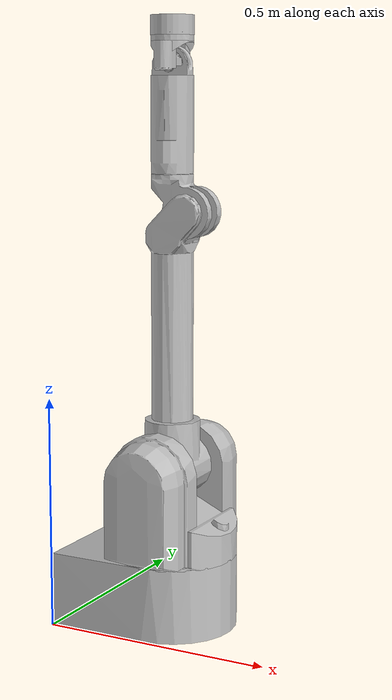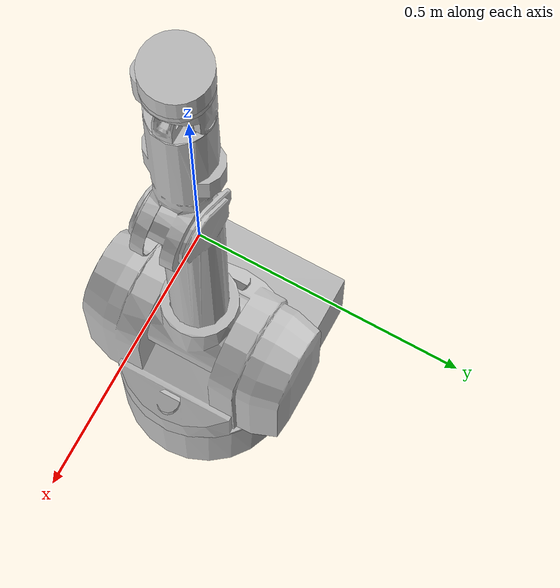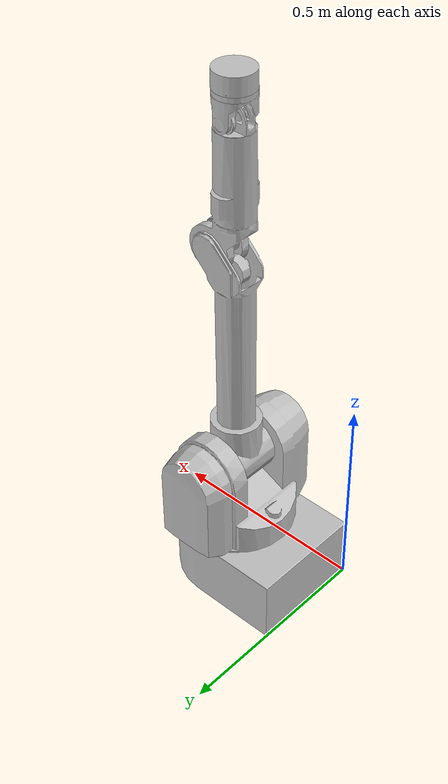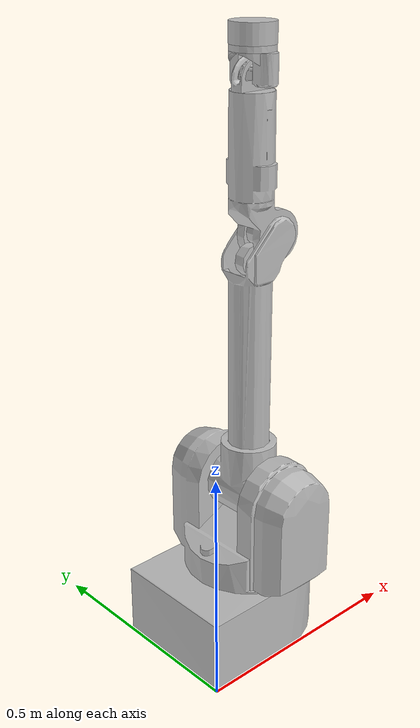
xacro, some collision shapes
<?xml version="1.0"?>
<robot name="iri_wam" xmlns:xacro="http://www.ros.org/wiki/xacro" >

  <!-- Set up definitions of parts of the robot body -->
  <xacro:include filename="$(find iri_wam_description)/xacro/iri_wam_base.urdf.xacro" />
  <xacro:include filename="$(find iri_wam_description)/xacro/iri_wam_1.urdf.xacro" />
  <xacro:include filename="$(find iri_wam_description)/xacro/iri_wam_2.urdf.xacro" />
  <xacro:include filename="$(find iri_wam_description)/xacro/iri_wam_3.urdf.xacro" />
  <xacro:include filename="$(find iri_wam_description)/xacro/iri_wam_4.urdf.xacro" />
  <xacro:include filename="$(find iri_wam_description)/xacro/iri_wam_5.urdf.xacro" />
  <xacro:include filename="$(find iri_wam_description)/xacro/iri_wam_6.urdf.xacro" />
  <xacro:include filename="$(find iri_wam_description)/xacro/iri_wam_7.urdf.xacro" />
  <xacro:include filename="$(find iri_wam_description)/xacro/iri_wam_tcp.urdf.xacro" />
  <xacro:include filename="$(find iri_wam_description)/xacro/misc/kinect.urdf.xacro" />
  <xacro:include filename="$(find iri_wam_description)/xacro/misc/spoon.urdf.xacro" />
  <xacro:include filename="$(find iri_wam_description)/xacro/misc/light_sensor.urdf.xacro" />
  <xacro:include filename="$(find iri_wam_description)/xacro/misc/hokuyo_laser.urdf.xacro" />

  <xacro:property name="robot_name" value="iri_wam"/>

  <!-- This will attach the robot to the world link -->
  <link name="world"/>
  <joint name="fixed" type="fixed">
    <parent link="world"/>
    <child  link="${robot_name}_link_footprint"/>
  </joint>

  <xacro:wambase prefix="${robot_name}"/>
  <xacro:wam1 prefix="${robot_name}" parent="${robot_name}_link_base"/>
  <xacro:wam2 prefix="${robot_name}" parent="${robot_name}_link_1"/>
  <xacro:wam3 prefix="${robot_name}" parent="${robot_name}_link_2"/>
  <xacro:wam4 prefix="${robot_name}" parent="${robot_name}_link_3"/>
  <xacro:wam5 prefix="${robot_name}" parent="${robot_name}_link_4"/>
  <xacro:wam6 prefix="${robot_name}" parent="${robot_name}_link_5"/>
  <xacro:wam7 prefix="${robot_name}" parent="${robot_name}_link_6"/>
  <xacro:wamtcp prefix="${robot_name}" parent="${robot_name}_link_7"/>
  <xacro:hokuyo_laser parent="${robot_name}_link_tcp" xyz="0 0 0.02" rpy="0 0 0"/>
  <!-- Not used but exposed here for educational purposes -->

  <!-- ros_control plugin -->
  <gazebo>
    <plugin name="gazebo_ros_control" filename="libgazebo_ros_control.so">
      <robotNamespace>/${robot_name}</robotNamespace>
      <robotParam>robot_description</robotParam>
      <robotSimType>gazebo_ros_control/DefaultRobotHWSim</robotSimType>
      <controlPeriod>0.002</controlPeriod>
      <eStopTopic>e_stop</eStopTopic>
    </plugin>
  </gazebo>

</robot>

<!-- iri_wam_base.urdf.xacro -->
<robot xmlns:xacro="http://www.ros.org/wiki/xacro">

  <xacro:property name="M_PI" value="3.1415926535897931" />

  <xacro:property name="base_mass" value="20"/>
  <xacro:property name="base_cg_x" value="0.0"/>
  <xacro:property name="base_cg_y" value="0.0"/>
  <xacro:property name="base_cg_z" value="0.0"/>

  <xacro:macro name="wambase" params="prefix">
    <link name="${prefix}_link_base">
        <inertial>
            <mass value="${base_mass}" />
            <origin xyz="${base_cg_x} ${base_cg_y} ${base_cg_z}" />
            <inertia ixx="0.5" ixy="0.0" ixz="0.0"
                     iyy="0.5" iyz="0.0"
                     izz="0.5" />
        </inertial>

        <visual>
            <origin xyz="0 0 0" rpy="0 0 0" />
            <geometry>
                <mesh filename="package://iri_wam_description/mesh/wambase.stl" scale="1.0 1.0 1.0" />
            </geometry>
            <material name="Grey" >
                <color rgba="0.75 0.75 0.75 1.0"/>
            </material>
        </visual>

        <collision>
            <origin xyz="0.0 0.0 0.0" rpy="0 0 0"/>
            <geometry>
                <mesh filename="package://iri_wam_description/mesh/wambase_collision.stl" scale="1.0 1.0 1.0" />
            </geometry>
            <contact_coefficients kd="1.0" kp="1000.0" mu="0"/>
        </collision>
    </link>

    <link name="${prefix}_link_footprint"/>

    <joint name="${prefix}_joint_footprint" type="fixed">
        <origin xyz="0.22 0.14 0.346" rpy="0 0 0" />
        <child link="${prefix}_link_base"/>
        <parent link="${prefix}_link_footprint"/>
    </joint>

    <gazebo reference="${prefix}_link_base">
        <selfCollide>true</selfCollide>
        <material>Gazebo/Grey</material>
    </gazebo>

  </xacro:macro>

</robot>

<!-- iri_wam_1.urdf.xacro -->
<robot xmlns:xacro="http://www.ros.org/wiki/xacro">

  <xacro:property name="M_PI" value="3.1415926535897931" />

  <xacro:macro name="wam1" params="prefix parent">

    <link name="${prefix}_link_1">
        <inertial>
            <mass value="8.3936" />
            <origin xyz="0.0 0.0 0.0" rpy="0 0 0" />
            <inertia ixx="0.5" ixy="0.0" ixz="0.0"
                     iyy="0.5" iyz="0.0"
                     izz="0.5" />
        </inertial>
        <visual>
            <origin xyz="0.0 0.0 0.0" rpy="0 0 0" />
            <geometry name="${prefix}_link_1_visual">
                <mesh filename="package://iri_wam_description/mesh/wam1.stl" scale="1.0 1.0 1.0" />
            </geometry>
            <material name="Grey" >
                <color rgba="0.75 0.75 0.75 1.0"/>
            </material>
        </visual>
        <collision>
            <origin xyz="0.0 0.0 0.0" rpy="0 0 0"/>
            <geometry name="${prefix}_link_1_collision">
                <mesh filename="package://iri_wam_description/mesh/wam1_collision.stl" scale="1.0 1.0 1.0" />
            </geometry>
            <contact_coefficients kd="1.0" kp="1000.0" mu="0"/>
        </collision>
    </link>

    <gazebo reference="${prefix}_link_1">
        <material>Gazebo/Grey</material>
        <selfCollide>true</selfCollide>
    </gazebo>

    <joint name="${prefix}_joint_1" type="revolute">
        <parent link="${parent}"/>
        <child link="${prefix}_link_1"/>
        <origin xyz="0.0 0.0 0.0" rpy="0 0 0" />
        <axis xyz="0 0 1" />
        <limit lower="-2.6" upper="2.6" effort="75" velocity="2.0"/>
        <dynamics damping="100"/>
    </joint>

    <transmission name="tran_1">
      <type>transmission_interface/SimpleTransmission</type>
      <joint name="${prefix}_joint_1">
       <hardwareInterface>EffortJointInterface</hardwareInterface>
      </joint>
      <actuator name="motor_1">
        <hardwareInterface>EffortJointInterface</hardwareInterface>
      	<mechanicalReduction>50</mechanicalReduction>
        <motorTorqueConstant>1</motorTorqueConstant>
      </actuator>
    </transmission>

  </xacro:macro>

</robot>

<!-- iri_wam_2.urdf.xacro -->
<robot xmlns:xacro="http://www.ros.org/wiki/xacro">

  <xacro:property name="M_PI" value="3.1415926535897931" />

  <xacro:macro name="wam2" params="prefix parent">

    <link name="${prefix}_link_2">
        <inertial>
            <mass value="4.8487" />
            <origin xyz="0 0 0" rpy="0 0 0" />
            <inertia ixx="0.1" ixy="0.0" ixz="0.0"
                     iyy="0.1" iyz="0.0"
                     izz="0.1" />
        </inertial>
        <visual>
            <origin xyz="0.0 0.0 0.0" rpy="0 0 0" />
            <geometry name="${prefix}_link_2_visual">
                <mesh filename="package://iri_wam_description/mesh/wam2.stl" scale="1.0 1.0 1.0" />
            </geometry>
            <material name="Grey" >
                <color rgba="0.75 0.75 0.75 1.0"/>
            </material>
        </visual>
        <collision>
            <origin xyz="0.0 0.0 0.0" rpy="0 0 0"/>
            <geometry name="${prefix}_link_2_collision">
                <mesh filename="package://iri_wam_description/mesh/wam2_collision.stl" scale="1.0 1.0 1.0" />
            </geometry>
            <contact_coefficients kd="1.0" kp="1000.0" mu="0"/>
        </collision>
    </link>

    <gazebo reference="${prefix}_link_2">
        <material>Gazebo/Grey</material>
        <selfCollide>true</selfCollide>
    </gazebo>

    <joint name="${prefix}_joint_2" type="revolute">
        <parent link="${parent}"/>
        <child link="${prefix}_link_2"/>
        <origin xyz="0.0 0.0 0.0" rpy="0 0 0" />
        <axis xyz="0 1 0" />
        <limit lower="-2.0" upper="2.0" effort="75" velocity="2.0"/>
        <dynamics damping="100"/>
    </joint>

    <transmission name="tran_2">
      <type>transmission_interface/SimpleTransmission</type>
      <joint name="${prefix}_joint_2">
      <hardwareInterface>EffortJointInterface</hardwareInterface>
      </joint>
      <actuator name="motor_2">
        <hardwareInterface>EffortJointInterface</hardwareInterface>
      	<mechanicalReduction>50</mechanicalReduction>
        <motorTorqueConstant>1</motorTorqueConstant>
      </actuator>
    </transmission>

  </xacro:macro>

</robot>

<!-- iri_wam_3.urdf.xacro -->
<robot xmlns:xacro="http://www.ros.org/wiki/xacro">

  <xacro:property name="M_PI" value="3.1415926535897931" />

  <xacro:macro name="wam3" params="prefix parent">

    <link name="${prefix}_link_3">
        <inertial>
            <mass value="1.7251" />
            <origin xyz="0 0 0.225" rpy="0 0 0" />
            <inertia ixx="0.1" ixy="0.0" ixz="0.0"
                     iyy="0.1" iyz="0.0"
                     izz="0.1" />
        </inertial>
        <visual>
            <origin xyz="0.0 0.0 0.0" rpy="0 0 0" />
            <geometry name="${prefix}_link_3_visual">
                <mesh filename="package://iri_wam_description/mesh/wam3.stl" scale="1.0 1.0 1.0" />
            </geometry>
            <material name="Grey" >
                <color rgba="0.75 0.75 0.75 1.0"/>
            </material>
        </visual>
        <collision>
            <origin xyz="0.0 0.0 0.0" rpy="0 0 0"/>
            <geometry name="${prefix}_link_3_collision">
                <mesh filename="package://iri_wam_description/mesh/wam3_collision.stl" scale="1.0 1.0 1.0" />
            </geometry>
            <contact_coefficients kd="1.0" kp="1000.0" mu="0"/>
        </collision>
    </link>

    <gazebo reference="${prefix}_link_3">
        <material>Gazebo/Grey</material>
        <selfCollide>true</selfCollide>
    </gazebo>

    <joint name="${prefix}_joint_3" type="revolute">
        <parent link="${parent}"/>
        <child link="${prefix}_link_3"/>
        <origin xyz="0.0 0.0 0.0" rpy="0 0 0" />
        <axis xyz="0 0 1" />
        <limit lower="-2.8" upper="2.8" effort="75" velocity="2.0"/>
        <dynamics damping="100"/>
    </joint>

    <transmission name="tran_3">
      <type>transmission_interface/SimpleTransmission</type>
      <joint name="${prefix}_joint_3">
        <hardwareInterface>EffortJointInterface</hardwareInterface>
      </joint>
      <actuator name="motor_3">
        <hardwareInterface>EffortJointInterface</hardwareInterface>
      	<mechanicalReduction>50</mechanicalReduction>
        <motorTorqueConstant>1</motorTorqueConstant>
      </actuator>
    </transmission>

  </xacro:macro>

</robot>

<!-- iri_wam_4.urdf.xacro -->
<robot xmlns:xacro="http://www.ros.org/wiki/xacro">

  <xacro:property name="M_PI" value="3.1415926535897931" />

  <xacro:macro name="wam4" params="prefix parent">

    <link name="${prefix}_link_4">
        <inertial>
            <mass value="2.0824" />
            <origin xyz="-0.045 -0.15 0" rpy="0 0 0" />
            <inertia ixx="0.2" ixy="0.0" ixz="0.0"
                     iyy="0.2" iyz="0.0"
                     izz="0.2" />
        </inertial>
        <visual>
            <origin xyz="0.0 0.0 0.0" rpy="0 0 0" />
            <geometry name="${prefix}_link_4_visual">
                <mesh filename="package://iri_wam_description/mesh/wam4.stl" scale="1.0 1.0 1.0" />
            </geometry>
            <material name="Grey" >
                <color rgba="0.75 0.75 0.75 1.0"/>
            </material>
        </visual>
        <collision>
            <origin xyz="0.0 0.0 0.0" rpy="0 0 0"/>
            <geometry name="${prefix}_link_4_collision">
                <mesh filename="package://iri_wam_description/mesh/wam4_collision.stl" scale="1.0 1.0 1.0" />
            </geometry>
            <contact_coefficients kd="1.0" kp="1000.0" mu="0"/>
        </collision>
    </link>

    <gazebo reference="${prefix}_link_4">
        <material>Gazebo/Grey</material>
        <selfCollide>true</selfCollide>
    </gazebo>

    <joint name="${prefix}_joint_4" type="revolute">
        <parent link="${parent}"/>
        <child link="${prefix}_link_4"/>
        <origin xyz="0.045 0.0 0.55" rpy="-${M_PI/2} 0 0" />
        <axis xyz="0 0 1" />
        <limit lower="-0.9" upper="3.1" effort="75" velocity="2.0"/>
        <dynamics damping="100"/>
    </joint>

    <transmission name="tran_4">
      <type>transmission_interface/SimpleTransmission</type>
      <joint name="${prefix}_joint_4">
        <hardwareInterface>EffortJointInterface</hardwareInterface>

      </joint>
      <actuator name="motor_4">
        <hardwareInterface>EffortJointInterface</hardwareInterface>
      	<mechanicalReduction>50</mechanicalReduction>
        <motorTorqueConstant>1</motorTorqueConstant>
      </actuator>
    </transmission>

  </xacro:macro>

</robot>

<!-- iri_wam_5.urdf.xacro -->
<robot xmlns:xacro="http://www.ros.org/wiki/xacro">

  <xacro:property name="M_PI" value="3.1415926535897931" />

  <xacro:macro name="wam5" params="prefix parent">

    <link name="${prefix}_link_5">
        <inertial>
            <mass value="0.3067" />
            <origin xyz="0 0 0" rpy="0 0 0" />
            <inertia ixx="0.1" ixy="0.0" ixz="0.0"
                     iyy="0.1" iyz="0.0"
                     izz="0.1" />
        </inertial>
        <visual>
            <origin xyz="0.0 0.0 0.0" rpy="0 0 0" />
            <geometry name="${prefix}_link_5_visual">
                <mesh filename="package://iri_wam_description/mesh/wam5.stl" scale="1.0 1.0 1.0" />
            </geometry>
            <material name="Grey" >
                <color rgba="0.75 0.75 0.75 1.0"/>
            </material>
        </visual>
        <collision>
            <origin xyz="0.0 0.0 0.0" rpy="0 0 0"/>
            <geometry name="${prefix}_link_5_collision">
                <mesh filename="package://iri_wam_description/mesh/wam5_collision.stl" scale="1.0 1.0 1.0" />
            </geometry>
            <contact_coefficients kd="1.0" kp="1000.0" mu="0"/>
        </collision>
    </link>

    <gazebo reference="${prefix}_link_5">
        <material>Gazebo/Grey</material>
        <selfCollide>true</selfCollide>
    </gazebo>

    <joint name="${prefix}_joint_5" type="revolute">
        <parent link="${parent}"/>
        <child link="${prefix}_link_5"/>
        <origin xyz="-0.045 -0.3 0.0" rpy="${M_PI/2} 0 0" />
        <axis xyz="0 0 1" />
        <limit lower="-4.76" upper="1.24" effort="75" velocity="2.0"/>
        <dynamics damping="100"/>
    </joint>

    <transmission name="tran_5">
      <type>transmission_interface/SimpleTransmission</type>
      <joint name="${prefix}_joint_5">
        <hardwareInterface>EffortJointInterface</hardwareInterface>
</joint>
      <actuator name="motor_5">
        <hardwareInterface>EffortJointInterface</hardwareInterface>
      	<mechanicalReduction>50</mechanicalReduction>
        <motorTorqueConstant>1</motorTorqueConstant>
      </actuator>
    </transmission>

  </xacro:macro>

</robot>

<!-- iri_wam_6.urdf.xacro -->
<robot xmlns:xacro="http://www.ros.org/wiki/xacro">

  <xacro:property name="M_PI" value="3.1415926535897931" />

  <xacro:macro name="wam6" params="prefix parent">

    <link name="${prefix}_link_6">
        <inertial>
            <mass value="0.4278" />
            <origin xyz="0 0 0" rpy="0 0 0" />
            <inertia ixx="0.1" ixy="0.0" ixz="0.0"
                     iyy="0.1" iyz="0.0"
                     izz="0.1" />
        </inertial>
        <visual>
            <origin xyz="0.0 0.0 0.0" rpy="0 0 0" />
            <geometry name="${prefix}_link_6_visual">
                <mesh filename="package://iri_wam_description/mesh/wam6.stl" scale="1.0 1.0 1.0" />
            </geometry>
            <material name="Grey" >
                <color rgba="0.75 0.75 0.75 1.0"/>
            </material>
        </visual>
        <collision>
            <origin xyz="0.0 0.0 0.0" rpy="0 0 0"/>
            <geometry name="${prefix}_link_6_collision">
                <mesh filename="package://iri_wam_description/mesh/wam6_collision.stl" scale="1.0 1.0 1.0" />
            </geometry>
            <contact_coefficients kd="1.0" kp="1000.0" mu="0"/>
        </collision>
    </link>

    <gazebo reference="${prefix}_link_6">
        <material>Gazebo/Grey</material>
        <selfCollide>true</selfCollide>
    </gazebo>

    <joint name="${prefix}_joint_6" type="revolute">
        <parent link="${parent}"/>
        <child link="${prefix}_link_6"/>
        <origin xyz="0.0 0.0 0.0" rpy="-${M_PI/2} 0 0" />
        <axis xyz="0 0 1" />
        <limit lower="-1.6" upper="1.6" effort="75" velocity="2.0"/>
        <dynamics damping="100"/>
    </joint>

    <transmission name="tran_6">
      <type>transmission_interface/SimpleTransmission</type>
      <joint name="${prefix}_joint_6">
        <hardwareInterface>EffortJointInterface</hardwareInterface>

</joint>
      <actuator name="motor_6">
        <hardwareInterface>EffortJointInterface</hardwareInterface>
      	<mechanicalReduction>50</mechanicalReduction>
        <motorTorqueConstant>1</motorTorqueConstant>
      </actuator>
    </transmission>

  </xacro:macro>

</robot>

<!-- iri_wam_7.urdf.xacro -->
<robot xmlns:xacro="http://www.ros.org/wiki/xacro">

  <xacro:property name="M_PI" value="3.1415926535897931" />

  <xacro:macro name="wam7" params="prefix parent">

    <link name="${prefix}_link_7">
        <inertial>
            <mass value="0.0557" />
            <origin xyz="0 0 0" rpy="0 0 0" />
            <inertia ixx="0.1" ixy="0.0" ixz="0.0"
                     iyy="0.1" iyz="0.0"
                     izz="0.1" />
        </inertial>
        <visual>
            <origin xyz="0.0 0.0 0.0" rpy="0 0 0" />
            <geometry name="${prefix}_link_7_visual">
                <mesh filename="package://iri_wam_description/mesh/wam7.stl" scale="1.0 1.0 1.0" />
            </geometry>
            <material name="Grey" >
                <color rgba="0.75 0.75 0.75 1.0"/>
            </material>
        </visual>
        <collision>
            <origin xyz="0.0 0.0 0.0" rpy="0 0 0"/>
            <geometry name="${prefix}_link_7_collision">
                <mesh filename="package://iri_wam_description/mesh/wam7_collision.stl" scale="1.0 1.0 1.0" />
            </geometry>
            <contact_coefficients kd="1.0" kp="1000.0" mu="0"/>
        </collision>
    </link>

    <gazebo reference="${prefix}_link_7">
        <material>Gazebo/Grey</material>
        <selfCollide>true</selfCollide>
    </gazebo>

    <joint name="${prefix}_joint_7" type="revolute">
        <parent link="${parent}"/>
        <child link="${prefix}_link_7"/>
        <origin xyz="0.0 0.0 0.0" rpy="${M_PI/2} 0 0" />
        <axis xyz="0 0 1" />
        <limit lower="-3.0" upper="3.0" effort="75" velocity="2.0"/>
        <dynamics damping="100"/>
    </joint>

    <transmission name="tran_7">
      <type>transmission_interface/SimpleTransmission</type>
      <joint name="${prefix}_joint_7">
        <hardwareInterface>EffortJointInterface</hardwareInterface>

</joint>
      <actuator name="motor_7">
        <hardwareInterface>EffortJointInterface</hardwareInterface>
      	<mechanicalReduction>50</mechanicalReduction>
        <motorTorqueConstant>1</motorTorqueConstant>
      </actuator>
    </transmission>

  </xacro:macro>

</robot>

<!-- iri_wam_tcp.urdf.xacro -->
<robot xmlns:xacro="http://www.ros.org/wiki/xacro">

  <xacro:property name="M_PI" value="3.1415926535897931" />

  <xacro:macro name="wamtcp" params="prefix parent">

    <link name="${prefix}_link_tcp" />

    <joint name="${prefix}_joint_tcp" type="fixed" >
      <parent link="${parent}" />
      <child link="${prefix}_link_tcp" />
      <origin xyz="0.0 0.0 0.06" rpy="0 0 0" />
    </joint>

  </xacro:macro>

</robot>

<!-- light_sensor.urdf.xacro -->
<robot xmlns:sensor="http://playerstage.sourceforge.net/gazebo/xmlschema/#sensor"
xmlns:controller="http://playerstage.sourceforge.net/gazebo/xmlschema/#controller"
xmlns:interface="http://playerstage.sourceforge.net/gazebo/xmlschema/#interface"
  xmlns:xacro="http://www.ros.org/wiki/xacro" >

    <xacro:property name="M_PI" value="3.1415926535897931" />

    <xacro:macro name="light_sensor" params="name prefix parent *origin ros_topic cam_info_topic update_rate res_x res_y image_format hfov">

      <joint name="${name}_joint" type="fixed">
        <origin xyz="0 0 0.09" rpy="0.0 ${-M_PI/2} 0.0" />
        <xacro:insert_block name="origin" />
        <parent link="${parent}"/>
        <child link="${name}_link"/>
      </joint>

      <link name="${name}_link">
        <inertial>
          <mass value="0.001" />
          <origin xyz="0 0 0" rpy="0 0 0" />
          <inertia ixx="0.0001" ixy="0" ixz="0" iyy="0.0001" iyz="0" izz="0.0001" />
        </inertial>
        <visual>
          <origin xyz="0 0 0" rpy="0 0 0" />
          <geometry>
            <box size="0.01 0.01 0.01" />
          </geometry>
    <material name="Blue">
      <color rgba="0.0 0.0 0.8 1"/>
    </material>
        </visual>
        <collision>
          <origin xyz="0 0 0.09" rpy="0 0 0" />
          <geometry>
            <box size="0.01 0.01 0.01" />
          </geometry>
        </collision>
      </link>

    <joint name="${name}_optical_joint" type="fixed">
      <origin xyz="0 0 0" rpy="0.0 ${+M_PI/2} 0.0" />
      <parent link="${name}_link" />
      <child link="${name}_optical_frame"/>
    </joint>

    <link name="${name}_optical_frame">
      <inertial>
        <mass value="0.01" />
        <origin xyz="0 0 0" />
        <inertia ixx="0.001"  ixy="0.0"  ixz="0.0"
                 iyy="0.001"  iyz="0.0"
                 izz="0.001" />
      </inertial>
      <visual>
        <origin xyz="0 0 0" rpy="0 0 0"/>
        <geometry>
          <box size="0.001 0.001 0.001" />
        </geometry>
      </visual>
      <collision>
        <origin xyz="0 0 0" rpy="0 0 0"/>
        <geometry>
          <box size="0.001 0.001 0.001" />
        </geometry>
      </collision>
    </link>

    <gazebo reference="${name}_link">
      <sensor:camera name="${name}_camera_sensor">
        <imageSize>${res_x} ${res_y}</imageSize>
        <imageFormat>${image_format}</imageFormat>
        <hfov>${hfov}</hfov>
        <nearClip>0.01</nearClip>
        <farClip>100</farClip>
        <updateRate>${update_rate}</updateRate>
        <controller:gazebo_ros_camera name="${name}_camera_controller" plugin="libgazebo_light_sensor_plugin.so">
          <alwaysOn>true</alwaysOn>
          <updateRate>${update_rate}</updateRate>
          <imageTopicName>${ros_topic}</imageTopicName>
          <cameraInfoTopicName>${cam_info_topic}</cameraInfoTopicName>
          <frameName>${name}_optical_frame</frameName>
          <interface:camera name="${name}_camera_iface" />
        </controller:gazebo_ros_camera>
      </sensor:camera>
      <turnGravityOff>false</turnGravityOff>
      <material>PR2/Blue</material>
    </gazebo>

    </xacro:macro>
  </robot>

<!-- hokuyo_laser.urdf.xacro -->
<robot xmlns:xacro="http://www.ros.org/wiki/xacro" name="hokuyo">

<xacro:macro name="hokuyo_laser" params="parent xyz rpy">
    <joint name="hokuyo_laser_joint" type="fixed">
        <axis xyz="0 0 1" />
        <origin xyz="${xyz}" rpy="${rpy}"/>
        <parent link="${parent}"/>
        <child link="hokuyo_laser_link"/>
    </joint>

    <link name="hokuyo_laser_link">
        <collision>
            <origin xyz="0 0 0" rpy="0 0 0"/>
            <geometry>
                <cylinder length="0.04" radius="0.045"/>
            </geometry>
        </collision>
        <visual>
            <origin xyz="0 0 0" rpy="0 0 0"/>
            <geometry>
                <mesh filename="package://hokuyo/meshes/hokuyo.dae"/>
            </geometry>
            <material name="Grey"/>
        </visual>
        <inertial>
            <mass value="1e-5" />
            <origin xyz="0 0 0" rpy="0 0 0"/>
            <inertia ixx="1e-6" ixy="0" ixz="0" iyy="1e-6" iyz="0" izz="1e-6" />
        </inertial>
    </link>

    <gazebo reference="hokuyo_laser_link">
        <gravity>true</gravity>
        <sensor type="ray" name="head_hokuyo_sensor">
            <pose>0 0 0 0 0 0</pose>
            <visualize>true</visualize>
            <update_rate>40</update_rate>
            <ray>
                <scan>
                    <horizontal>
                        <samples>360</samples>
                        <resolution>1</resolution>
                        <min_angle>-3.14159</min_angle>
                        <max_angle>3.14159</max_angle>
                    </horizontal>
                </scan>
                <range>
                    <min>0.2</min>
                    <max>40</max>
                    <resolution>0.025</resolution>
                </range>
                <noise>
                    <type>gaussian</type>
                    <mean>0.0</mean>
                    <stddev>0.0</stddev>
                </noise>
            </ray>
            <plugin name="gazebo_ros_head_hokuyo_controller" filename="libgazebo_ros_laser.so">
                <robotNamespace></robotNamespace>
                <topicName>/laser_scan</topicName>
                <frameName>/hokuyo_laser_link</frameName>
            </plugin>
        </sensor>
    </gazebo>

</xacro:macro>

</robot>
